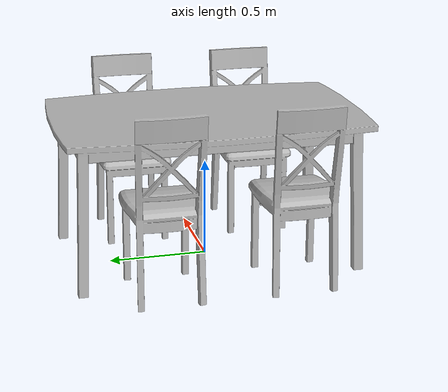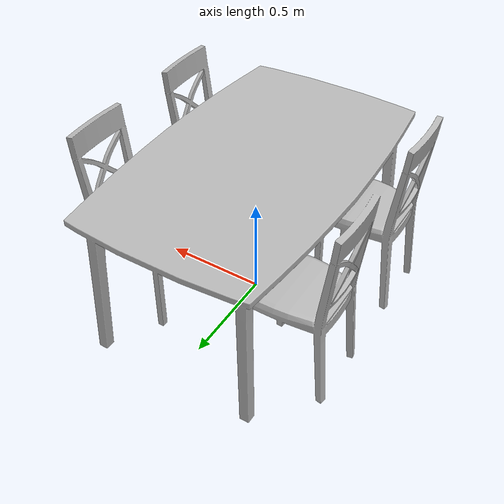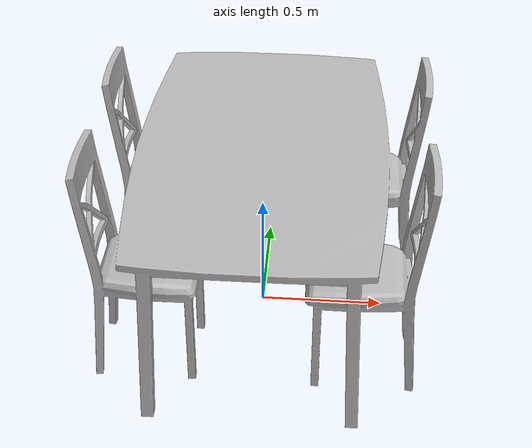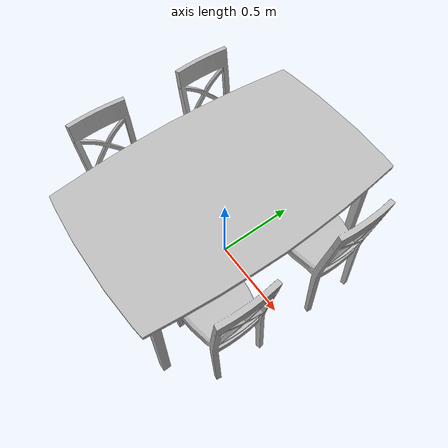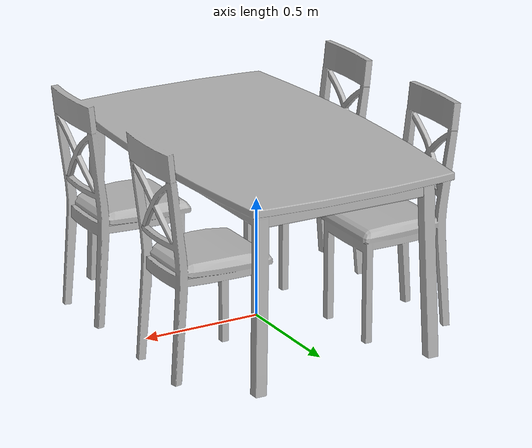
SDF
<?xml version='1.0'?>
<sdf version='1.4'>
  <model name='134'>
    <pose>0 0 0 0 0 0</pose>
    <static>true</static>
    <link name='link'>
      <collision name='collision'>
        <pose>0 0 0 0 0 0</pose>
        <geometry>
          <box>
            <size>1.31043 1.55 2</size>
          </box>
        </geometry>
      </collision>
      <visual name='visual'>
        <pose>0 0 0 0 0 0</pose>
        <geometry>
          <mesh><uri>model://134/134.dae</uri></mesh>
        </geometry>
      </visual>
    </link>
  </model>
</sdf>
